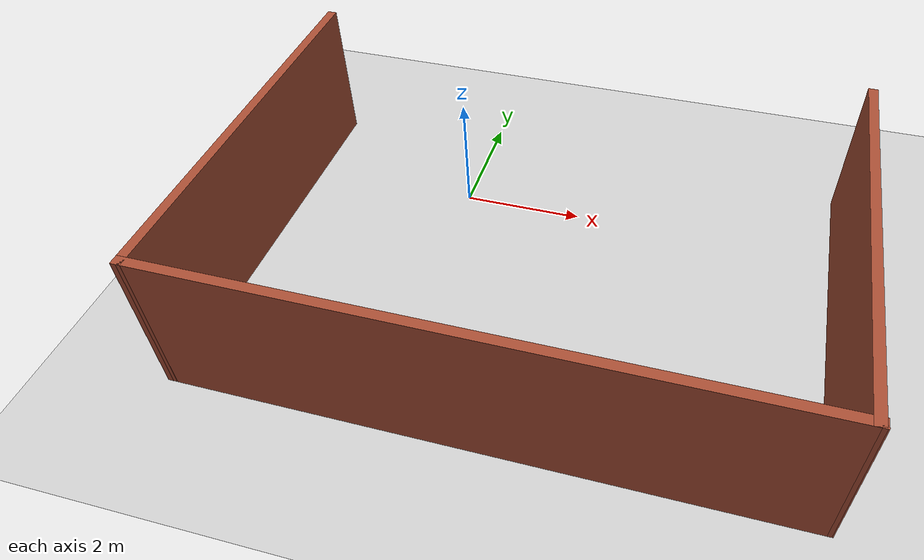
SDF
<sdf version="1.4">
  <world name="default">

    <scene>
      <ambient>0.4 0.4 0.4 1</ambient>
      <background>0.7 0.7 0.7 1</background>
      <shadows>true</shadows>
    </scene>

    <!-- A global light source -->
    <include>
      <uri>model://sun</uri>
    </include>

    <!-- A ground plane -->
    <include>
      <uri>model://ground_plane</uri>
    </include>

    <physics type="ode">
      <real_time_update_rate>1000.0</real_time_update_rate>
      <max_step_size>0.001</max_step_size>
      <real_time_factor>1</real_time_factor>
      <ode>
        <solver>
          <type>quick</type>
          <iters>150</iters>
          <precon_iters>0</precon_iters>
          <sor>1.400000</sor>
          <use_dynamic_moi_rescaling>1</use_dynamic_moi_rescaling>
        </solver>
        <constraints>
          <cfm>0.00001</cfm>
          <erp>0.2</erp>
          <contact_max_correcting_vel>2000.000000</contact_max_correcting_vel>
          <contact_surface_layer>0.01000</contact_surface_layer>
        </constraints>
      </ode>
    </physics>

  <model name='walls'>
    <pose>1.7171 -1.72982 0 0 -0 0</pose>
    <link name='Wall_2'>
      <collision name='Wall_2_Collision'>
        <geometry>
          <box>
            <size>6.5 0.15 2.5</size>
          </box>
        </geometry>
        <pose>0 0 1.25 0 -0 0</pose>
      </collision>
      <visual name='Wall_2_Visual'>
        <pose>0 0 1.25 0 -0 0</pose>
        <geometry>
          <box>
            <size>6.5 0.15 2.5</size>
          </box>
        </geometry>
        <material>
          <script>
            <uri>file://media/materials/scripts/gazebo.material</uri>
            <name>Gazebo/Bricks</name>
          </script>
          <ambient>1 1 1 1</ambient>
        </material>
        <meta>
          <layer>0</layer>
        </meta>
      </visual>
      <pose>4.69239 -0.008673 0 0 -0 -1.57906</pose>
    </link>
    <link name='Wall_3'>
      <collision name='Wall_3_Collision'>
        <geometry>
          <box>
            <size>9.55249 0.15 2.5</size>
          </box>
        </geometry>
        <pose>0 0 1.25 0 -0 0</pose>
      </collision>
      <visual name='Wall_3_Visual'>
        <pose>0 0 1.25 0 -0 0</pose>
        <geometry>
          <box>
            <size>9.55249 0.15 2.5</size>
          </box>
        </geometry>
        <material>
          <script>
            <uri>file://media/materials/scripts/gazebo.material</uri>
            <name>Gazebo/Bricks</name>
          </script>
          <ambient>1 1 1 1</ambient>
        </material>
        <meta>
          <layer>0</layer>
        </meta>
      </visual>
      <pose>-0.017592 -3.17493 0 0 -0 3.13973</pose>
    </link>
    <link name='Wall_4'>
      <collision name='Wall_4_Collision'>
        <geometry>
          <box>
            <size>6.5 0.15 2.5</size>
          </box>
        </geometry>
        <pose>0 0 1.25 0 -0 0</pose>
      </collision>
      <visual name='Wall_4_Visual'>
        <pose>0 0 1.25 0 -0 0</pose>
        <geometry>
          <box>
            <size>6.5 0.15 2.5</size>
          </box>
        </geometry>
        <material>
          <script>
            <uri>file://media/materials/scripts/gazebo.material</uri>
            <name>Gazebo/Bricks</name>
          </script>
          <ambient>1 1 1 1</ambient>
        </material>
        <meta>
          <layer>0</layer>
        </meta>
      </visual>
      <pose>-4.70134 0.008817 0 0 -0 1.56529</pose>
    </link>
    <static>1</static>
  </model>

  </world>

</sdf>
